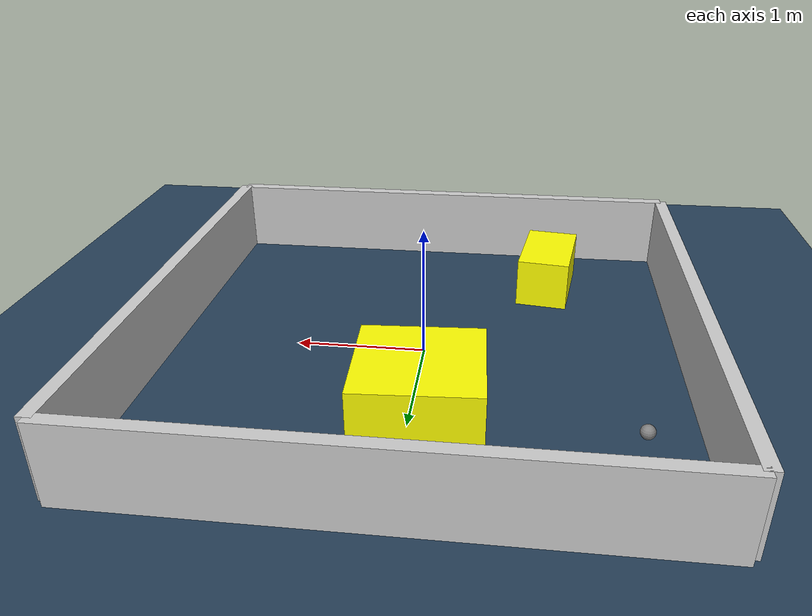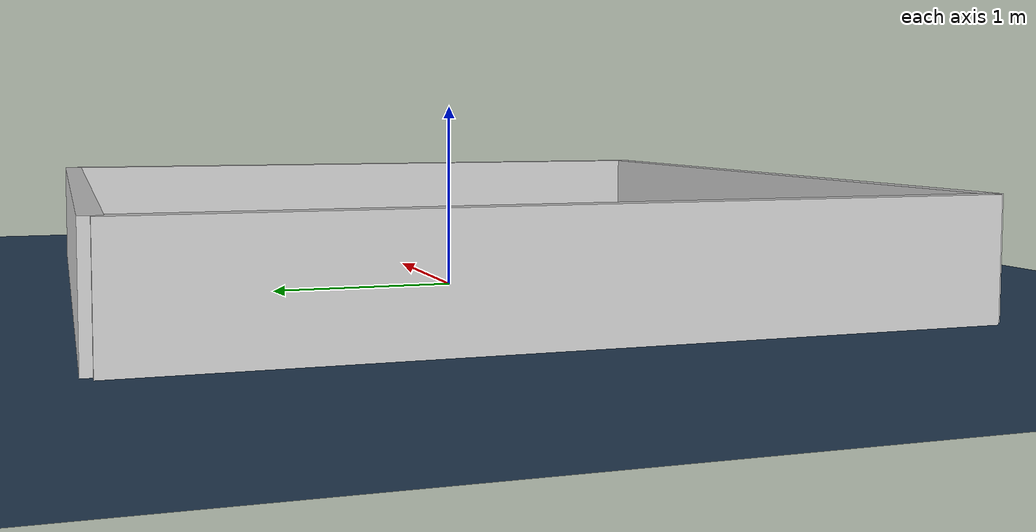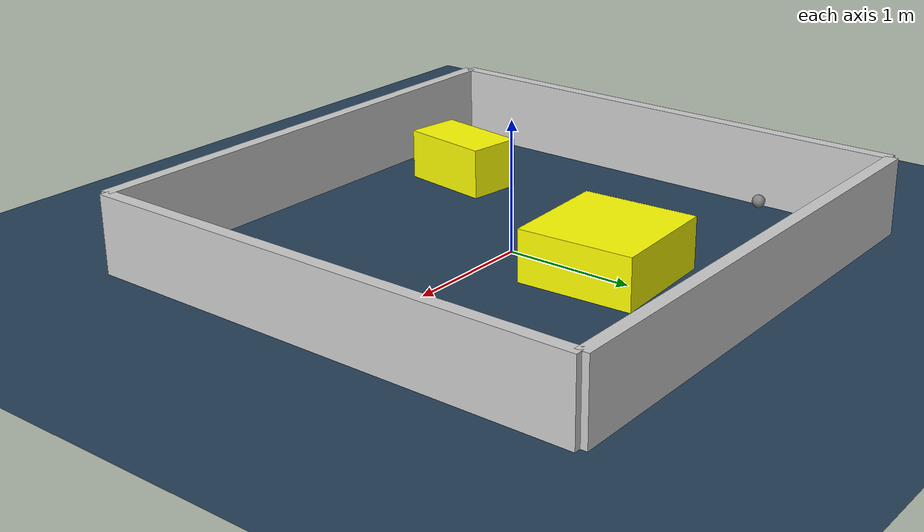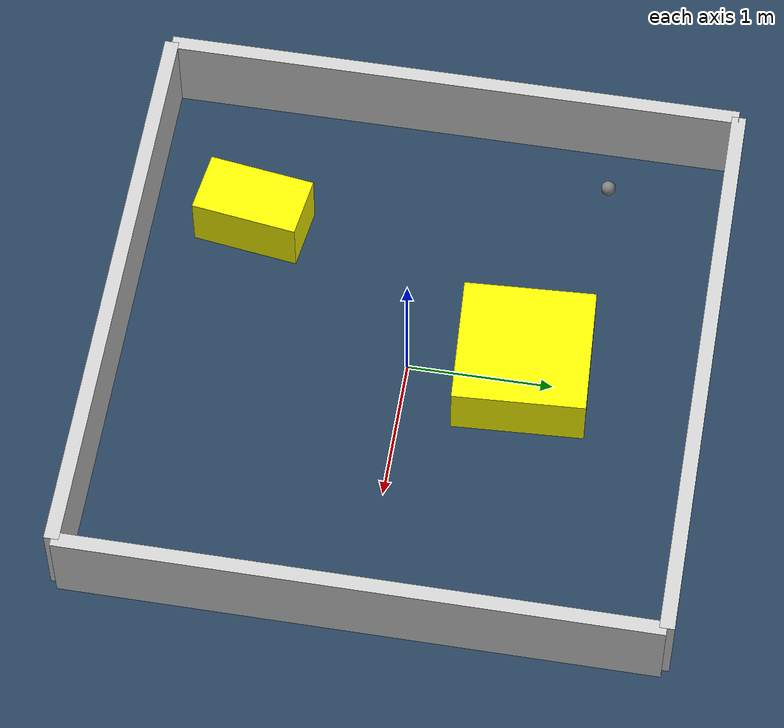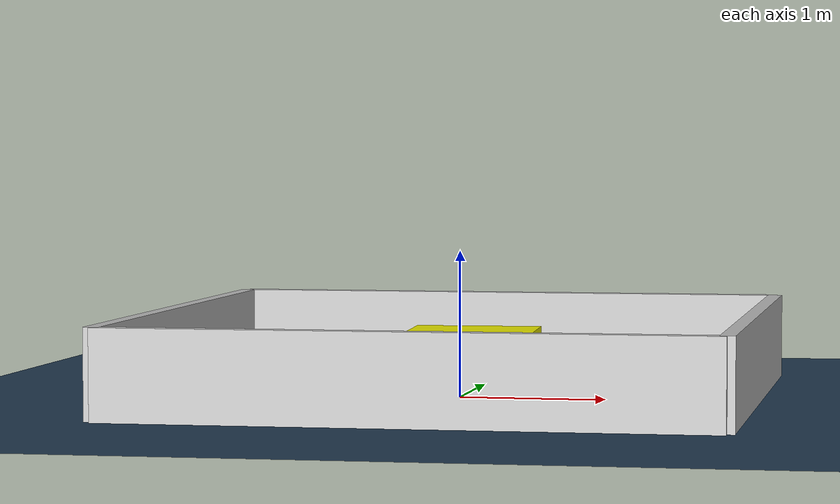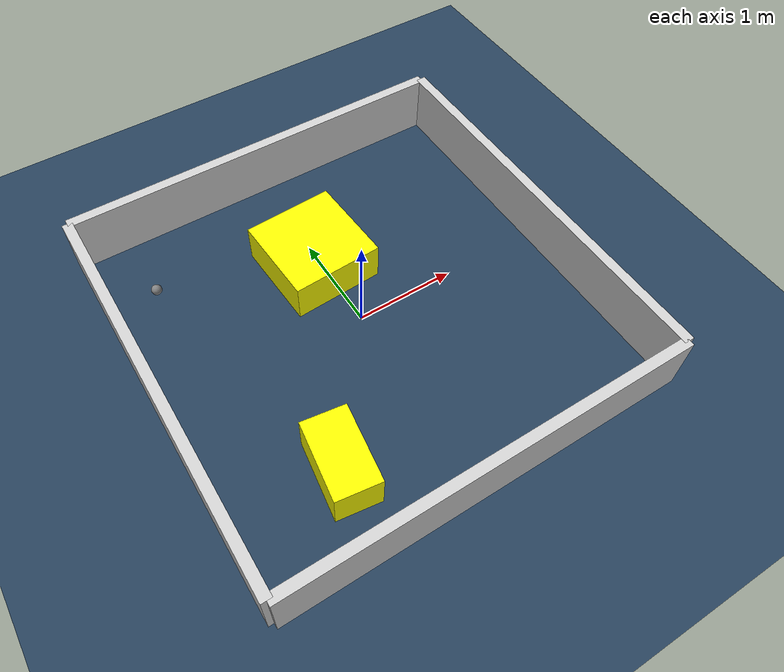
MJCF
<?xml version="1.0" ?>
<mujoco model="generated_environment">
  <option timestep="0.01" integrator="RK4" cone="elliptic"/>
  <default>
    <geom density="1"/>
  </default>
  <asset>
    <texture builtin="gradient" height="3072" rgb1="0.3 0.5 0.7" rgb2="0 0 0" type="skybox" width="512"/>
    <texture builtin="checker" height="300" mark="edge" markrgb="0.8 0.8 0.8" name="groundplane" rgb1="0.2 0.3 0.4" rgb2="0.1 0.2 0.3" type="2d" width="300"/>
    <material name="groundplane" reflectance="0.2" texrepeat="5 5" texture="groundplane" texuniform="true"/>
    <material name="robot" rgba="0.0 1.0 0.0 1"/>
  </asset>
  <worldbody>
    <light dir="0 0 -1" directional="true" pos="0 0 1.5"/>
    <geom condim="4" friction="1.0 0.005 0.001" material="groundplane" name="floor" size="0 0 0.05" type="plane"/>
    <body name="walls">
      <geom name="wall_1" condim="4" pos="-2.0 0.0 0.3" rgba="0.800000011920929 0.800000011920929 0.800000011920929 1.0" size="0.05 2.0 0.3" type="box"/>
      <geom name="wall_2" condim="4" pos="2.0 0.0 0.3" rgba="0.800000011920929 0.800000011920929 0.800000011920929 1.0" size="0.05 2.0 0.3" type="box"/>
      <geom name="wall_3" condim="4" pos="0.0 -2.0 0.3" rgba="0.800000011920929 0.800000011920929 0.800000011920929 1.0" size="2.0 0.05 0.3" type="box"/>
      <geom name="wall_4" condim="4" pos="0.0 2.0 0.3" rgba="0.800000011920929 0.800000011920929 0.800000011920929 1.0" size="2.0 0.05 0.3" type="box"/>
    </body>
    <body name="robot">
      <joint name="joint_x" type="slide" pos="0 0 0" axis="1 0 0"/>
      <joint name="joint_y" type="slide" pos="0 0 0" axis="0 1 0"/>
      <geom name="robot" type="sphere" pos="-1.5412428630694066 1.1683003042218303 0.2" size="0.05" mass="5." friction="1.0 0.005 0.0001" condim="4"/>
      <site name="sensor_ball"/>
    </body>
    <body name="obstacle_1_movable">
      <geom name="obstacle_1_movable" condim="4" pos="-0.061093323441022696 0.788747785895918 0.2" euler="0 0 93.12969969317795" friction="1.0 0.005 0.001" rgba="1 1 0 1" size="0.4513051067599223 0.4518700081633607 0.2" type="box" mass="0.1"/>
      <joint type="free"/>
    </body>
    <body name="obstacle_2_movable">
      <geom name="obstacle_2_movable" condim="4" pos="-0.960222115708022 -1.2371988952689996 0.2" euler="0 0 352.16349721694945" friction="1.0 0.005 0.001" rgba="1 1 0 1" size="0.21369660564223614 0.37055909420590527 0.2" type="box" mass="0.1"/>
      <joint type="free"/>
    </body>
  </worldbody>
  <actuator>
    <motor name="actuator_x" joint="joint_x" gear="1" ctrlrange="-1 1"/>
    <motor name="actuator_y" joint="joint_y" gear="1" ctrlrange="-1 1"/>
  </actuator>
</mujoco>
